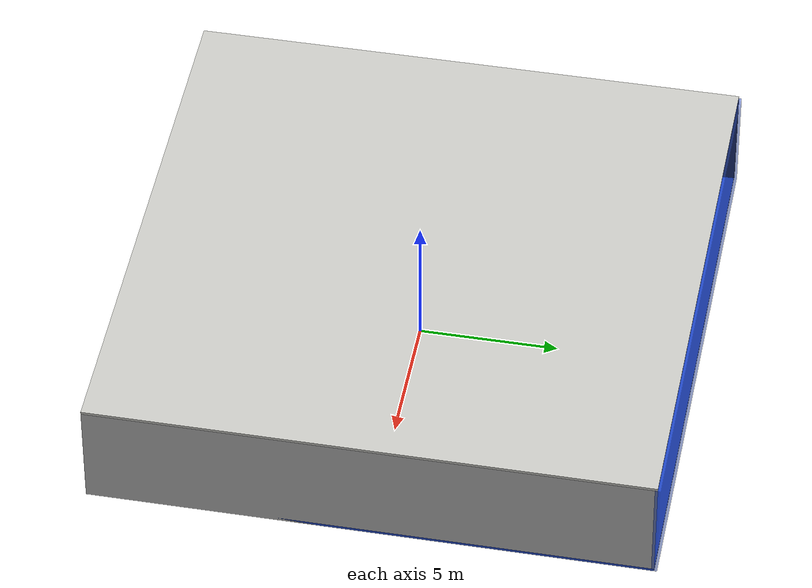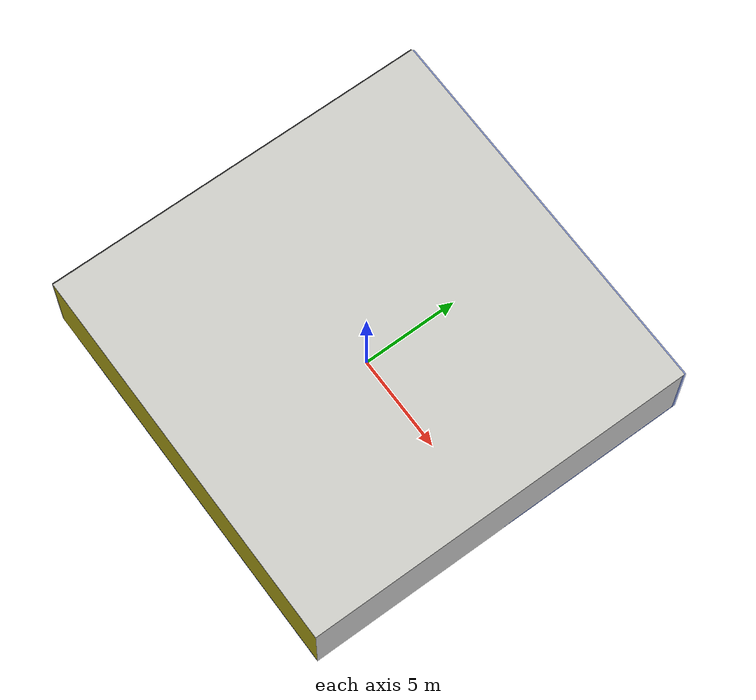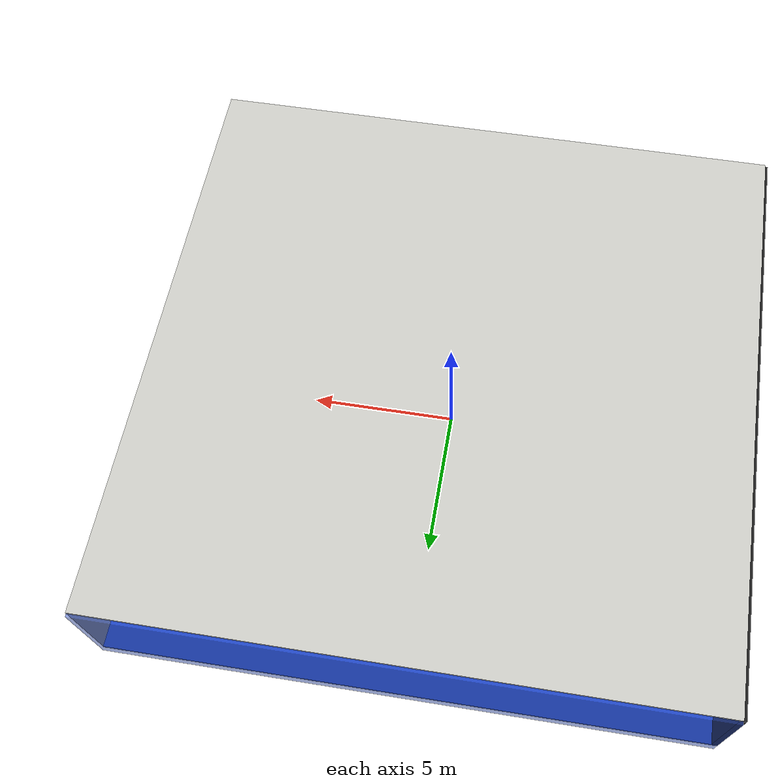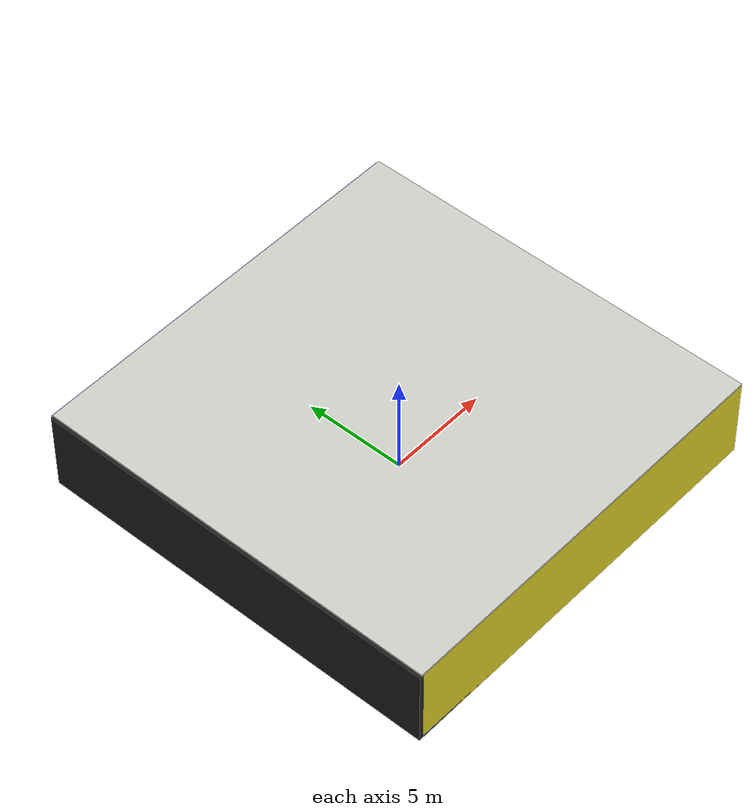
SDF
<sdf version="1.4">
 <world name="default">
  <physics type="ode">
   <max_step_size>0.001</max_step_size>
   <real_time_factor>1</real_time_factor>
   <real_time_update_rate>1000</real_time_update_rate>
   <gravity>0 0 -9.8</gravity>
  </physics>
  <scene><ambient>0.4 0.4 0.4 1</ambient><background>0.7 0.7 0.7 1</background><shadows>1</shadows></scene>
  <model name="Surrounding">
   <static>1</static>
   <link name="Ceiling">
    <collision name="Ceiling_Collision"><geometry><box><size>20 20 0.1</size></box></geometry></collision>
    <visual name="Ceiling_Visual">
     <geometry><box><size>20 20 0.1</size></box></geometry>
     <material>
      <script><uri>file://media/materials/scripts/gazebo.material</uri><name>Gazebo/CeilingTiled</name></script>
     </material>
    </visual>
    <pose>0 0 4.05 0 0 0</pose>
   </link>
   <link name="Wall_South">
    <collision name="Wall_South_Collision">
     <geometry><box><size>20 0 4</size></box></geometry>
     <pose>0 0 2 0 -0 0</pose>
    </collision>
    <visual name="Wall_South_Visual">
     <pose>0 0 2 0 -0 0</pose>
     <geometry><box><size>20 0 4</size></box></geometry>
     <material>
      <script><uri>file://media/materials/scripts/gazebo.material</uri><name>Gazebo/Yellow</name></script>
     </material>
    </visual>
    <velocity_decay><linear>0</linear><angular>0</angular></velocity_decay>
    <pose>0 -10 0 0 -0 0</pose>
   </link>
   <link name="Wall_East">
    <collision name="Wall_21_Collision">
     <geometry><box><size>20 0 4</size></box></geometry>
     <pose>0 0 2 0 -0 0</pose>
    </collision>
    <visual name="Wall_21_Visual">
     <pose>0 0 2 0 -0 0</pose>
     <geometry><box><size>20 0 4</size></box></geometry>
     <material>
      <script><uri>file://media/materials/scripts/gazebo.material</uri><name>Gazebo/CloudySky</name></script>
     </material>
    </visual>
    <velocity_decay><linear>0</linear><angular>0</angular></velocity_decay>
    <pose>10 0 0 0 -0 1.5708</pose>
   </link>
   <link name="Wall_North">
    <collision name="Wall_22_Collision">
     <geometry><box><size>20 0.2 4</size></box></geometry>
     <pose>0 0 2 0 -0 0</pose>
    </collision>
    <visual name="Wall_22_Visual">
     <pose>0 0 2 0 -0 0</pose>
     <geometry><box><size>20 0.2 4</size></box></geometry>
     <material>
      <script><uri>file://media/materials/scripts/gazebo.material</uri><name>Gazebo/BlueTransparent</name></script>
     </material>
    </visual>
    <velocity_decay><linear>0</linear><angular>0</angular></velocity_decay>
    <pose>0 10 0 0 -0 0</pose>
   </link>
   <link name="Wall_West">
    <collision name="Wall_23_Collision">
     <geometry><box><size>20 0.2 4</size></box></geometry>
     <pose>0 0 2 0 -0 0</pose>
    </collision>
    <visual name="Wall_23_Visual">
     <pose>0 0 2 0 -0 0</pose>
     <geometry><box><size>20 0.2 4</size></box></geometry>
     <material>
      <script><uri>file://media/materials/scripts/gazebo.material</uri><name>Gazebo/FlatBlack</name></script>
     </material>
    </visual>
    <velocity_decay><linear>0</linear><angular>0</angular></velocity_decay>
    <pose>-10 0 0 0 0 -1.5708</pose>
   </link>
   <link name="Ground_link">
    <collision name="collision">
     <pose>0 0 .05 0 -0 0</pose>
     <geometry><box><size>20 20 0.1</size></box></geometry>
    </collision>
    <visual name="visual">
     <pose>0 0 .05 0 -0 0</pose>
     <geometry><box><size>20 20 0.1</size></box></geometry>
     <material>
      <script><uri>file://media/materials/scripts/gazebo.material</uri><name>Gazebo/Blue</name></script>
     </material>
    </visual>
   </link>
   <static>1</static>
  </model>
  <spherical_coordinates>
   <surface_model>EARTH_WGS84</surface_model>
   <latitude_deg>0</latitude_deg>
   <longitude_deg>0</longitude_deg>
   <elevation>0</elevation>
   <heading_deg>0</heading_deg>
  </spherical_coordinates>
  <light name="lightball_0" type="diffuse">
   <diffuse>0.8 0.8 0.8 1</diffuse>
   <specular>0.2 0.2 0.2 1</specular>
   <attenuation>
    <range>100</range>
    <constant>0.7</constant>
    <linear>0.01</linear>
    <quadratic>0.001</quadratic>
   </attenuation>
   <direction>-0.5 0.1 -0.9</direction>
   <pose>0.75316152889 5.18500522184 1.23923413593 0 0 0</pose>
  </light>
  <light name="lightball_1" type="diffuse">
   <diffuse>0.8 0.8 0.8 1</diffuse>
   <specular>0.2 0.2 0.2 1</specular>
   <attenuation>
    <range>100</range>
    <constant>0.7</constant>
    <linear>0.01</linear>
    <quadratic>0.001</quadratic>
   </attenuation>
   <direction>-0.5 0.1 -0.9</direction>
   <pose>1.31500576522 3.29051679506 2.92465905379 0 0 0</pose>
  </light>
  <light name="lightball_2" type="diffuse">
   <diffuse>0.8 0.8 0.8 1</diffuse>
   <specular>0.2 0.2 0.2 1</specular>
   <attenuation>
    <range>100</range>
    <constant>0.7</constant>
    <linear>0.01</linear>
    <quadratic>0.001</quadratic>
   </attenuation>
   <direction>-0.5 0.1 -0.9</direction>
   <pose>-3.4126564468 -6.42168554002 0.912743677392 0 0 0</pose>
  </light>
  <light name="lightball_3" type="diffuse">
   <diffuse>0.8 0.8 0.8 1</diffuse>
   <specular>0.2 0.2 0.2 1</specular>
   <attenuation>
    <range>100</range>
    <constant>0.7</constant>
    <linear>0.01</linear>
    <quadratic>0.001</quadratic>
   </attenuation>
   <direction>-0.5 0.1 -0.9</direction>
   <pose>0.960829988195 -8.02082739726 3.15612450193 0 0 0</pose>
  </light>
  <light name="lightball_4" type="diffuse">
   <diffuse>0.8 0.8 0.8 1</diffuse>
   <specular>0.2 0.2 0.2 1</specular>
   <attenuation>
    <range>100</range>
    <constant>0.7</constant>
    <linear>0.01</linear>
    <quadratic>0.001</quadratic>
   </attenuation>
   <direction>-0.5 0.1 -0.9</direction>
   <pose>3.90834939583 5.58046259577 1.36572849763 0 0 0</pose>
  </light>
  <light name="lightball_5" type="diffuse">
   <diffuse>0.8 0.8 0.8 1</diffuse>
   <specular>0.2 0.2 0.2 1</specular>
   <attenuation>
    <range>100</range>
    <constant>0.7</constant>
    <linear>0.01</linear>
    <quadratic>0.001</quadratic>
   </attenuation>
   <direction>-0.5 0.1 -0.9</direction>
   <pose>-9.40839582176 -3.27529759411 2.64229173638 0 0 0</pose>
  </light>
  <light name="lightball_6" type="diffuse">
   <diffuse>0.8 0.8 0.8 1</diffuse>
   <specular>0.2 0.2 0.2 1</specular>
   <attenuation>
    <range>100</range>
    <constant>0.7</constant>
    <linear>0.01</linear>
    <quadratic>0.001</quadratic>
   </attenuation>
   <direction>-0.5 0.1 -0.9</direction>
   <pose>7.0765887148 5.99903916738 1.01484779963 0 0 0</pose>
  </light>
  <light name="lightball_7" type="diffuse">
   <diffuse>0.8 0.8 0.8 1</diffuse>
   <specular>0.2 0.2 0.2 1</specular>
   <attenuation>
    <range>100</range>
    <constant>0.7</constant>
    <linear>0.01</linear>
    <quadratic>0.001</quadratic>
   </attenuation>
   <direction>-0.5 0.1 -0.9</direction>
   <pose>-4.8989489588 -1.74780119042 3.27311279393 0 0 0</pose>
  </light>
  <light name="lightball_8" type="diffuse">
   <diffuse>0.8 0.8 0.8 1</diffuse>
   <specular>0.2 0.2 0.2 1</specular>
   <attenuation>
    <range>100</range>
    <constant>0.7</constant>
    <linear>0.01</linear>
    <quadratic>0.001</quadratic>
   </attenuation>
   <direction>-0.5 0.1 -0.9</direction>
   <pose>0.246014791234 -8.01306742666 3.86882497726 0 0 0</pose>
  </light>
  <light name="lightball_9" type="diffuse">
   <diffuse>0.8 0.8 0.8 1</diffuse>
   <specular>0.2 0.2 0.2 1</specular>
   <attenuation>
    <range>100</range>
    <constant>0.7</constant>
    <linear>0.01</linear>
    <quadratic>0.001</quadratic>
   </attenuation>
   <direction>-0.5 0.1 -0.9</direction>
   <pose>-0.551070450988 -0.772141340172 2.60112159648 0 0 0</pose>
  </light>
  <light name="lightball_10" type="diffuse">
   <diffuse>0.8 0.8 0.8 1</diffuse>
   <specular>0.2 0.2 0.2 1</specular>
   <attenuation>
    <range>100</range>
    <constant>0.7</constant>
    <linear>0.01</linear>
    <quadratic>0.001</quadratic>
   </attenuation>
   <direction>-0.5 0.1 -0.9</direction>
   <pose>-2.78904392489 2.56481976911 0.682758199354 0 0 0</pose>
  </light>
  <light name="lightball_11" type="diffuse">
   <diffuse>0.8 0.8 0.8 1</diffuse>
   <specular>0.2 0.2 0.2 1</specular>
   <attenuation>
    <range>100</range>
    <constant>0.7</constant>
    <linear>0.01</linear>
    <quadratic>0.001</quadratic>
   </attenuation>
   <direction>-0.5 0.1 -0.9</direction>
   <pose>9.67922061901 8.24595461136 0.757241334428 0 0 0</pose>
  </light>
  <light name="lightball_12" type="diffuse">
   <diffuse>0.8 0.8 0.8 1</diffuse>
   <specular>0.2 0.2 0.2 1</specular>
   <attenuation>
    <range>100</range>
    <constant>0.7</constant>
    <linear>0.01</linear>
    <quadratic>0.001</quadratic>
   </attenuation>
   <direction>-0.5 0.1 -0.9</direction>
   <pose>-4.49007163998 6.1982301979 3.4649317011 0 0 0</pose>
  </light>
  <light name="lightball_13" type="diffuse">
   <diffuse>0.8 0.8 0.8 1</diffuse>
   <specular>0.2 0.2 0.2 1</specular>
   <attenuation>
    <range>100</range>
    <constant>0.7</constant>
    <linear>0.01</linear>
    <quadratic>0.001</quadratic>
   </attenuation>
   <direction>-0.5 0.1 -0.9</direction>
   <pose>7.77517353419 3.97165101253 3.86324724274 0 0 0</pose>
  </light>
  <include><uri>model://cabinet</uri><pose>-8.61188559072 -1.74641857865 0 0 0 3.12346578781</pose></include>
  <include>
   <uri>model://robocup_3Dsim_goal</uri>
   <pose>-4.44617424582 -6.65472367685 0 0 0 0.241261318866</pose>
  </include>
  <include>
   <uri>model://construction_cone</uri>
   <pose>-1.81242539305 -1.92217062997 0 0 0 2.14396189504</pose>
  </include>
  <include>
   <uri>model://construction_cone</uri>
   <pose>5.12606945255 -0.326730822021 0 0 0 2.86489125508</pose>
  </include>
  <include>
   <uri>model://construction_cone</uri>
   <pose>7.36667063335 -6.56217943627 0 0 0 2.68914758588</pose>
  </include>
 </world>
</sdf>

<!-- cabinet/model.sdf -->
<sdf version="1.5">
  <model name="cabinet">
    <static>true</static>
    <link name="cabinet_bottom_plate">
      <inertial>
        <pose>0 0 -1 0 0 0</pose>
        <inertia>
          <ixx>2.050000</ixx>
          <ixy>0</ixy>
          <ixz>0</ixz>
          <iyy>2.050000</iyy>
          <iyz>0</iyz>
          <izz>2.050000</izz>
        </inertia>
        <mass>25.000000</mass>
      </inertial>
      <collision name="cabinet_bottom_plate_geom">
        <pose>0 0 0.010000 0 0 0</pose>
        <geometry>
          <box>
            <size>0.450000 0.450000 0.020000</size>
          </box>
        </geometry>
      </collision>
      <visual name="cabinet_bottom_plate_geom_visual">
        <pose>0 0 0.010000 0 0 0</pose>
        <geometry>
          <box>
            <size>0.450000 0.450000 0.020000</size>
          </box>
        </geometry>
        <material>
          <script>
            <uri>model://media/materials/scripts/gazebo.material</uri>
            <name>Gazebo/Wood</name>
          </script>
        </material>
      </visual>
      <collision name="cabinet_bottom_plate_geom_cabinet_back_plate">
        <pose>0.235000 0 0.510000 0 0 0</pose>
        <geometry>
          <box>
            <size>0.020000 0.450000 1.020000</size>
          </box>
        </geometry>
      </collision>
      <visual name="cabinet_bottom_plate_geom_cabinet_back_plate_visual">
        <pose>0.235000 0 0.510000 0 0 0</pose>
        <geometry>
          <box>
            <size>0.020000 0.450000 1.020000</size>
          </box>
        </geometry>
        <material>
          <script>
            <uri>model://media/materials/scripts/gazebo.material</uri>
            <name>Gazebo/Wood</name>
          </script>
        </material>
      </visual>
      <collision name="cabinet_bottom_plate_geom_cabinet_left_plate">
        <pose>0 0.235000 0.510000 0 0 0</pose>
        <geometry>
          <box>
            <size>0.450000 0.020000 1.020000</size>
          </box>
        </geometry>
      </collision>
      <visual name="cabinet_bottom_plate_geom_cabinet_left_plate_visual">
        <pose>0 0.235000 0.510000 0 0 0</pose>
        <geometry>
          <box>
            <size>0.450000 0.020000 1.020000</size>
          </box>
        </geometry>
        <material>
          <script>
            <uri>model://media/materials/scripts/gazebo.material</uri>
            <name>Gazebo/Wood</name>
          </script>
        </material>
      </visual>
      <collision name="cabinet_bottom_plate_geom_cabinet_middle_plate">
        <pose>0 0 0.510000 0 0 0</pose>
        <geometry>
          <box>
            <size>0.450000 0.450000 0.020000</size>
          </box>
        </geometry>
      </collision>
      <visual name="cabinet_bottom_plate_geom_cabinet_middle_plate_visual">
        <pose>0 0 0.510000 0 0 0</pose>
        <geometry>
          <box>
            <size>0.450000 0.450000 0.020000</size>
          </box>
        </geometry>
        <material>
          <script>
            <uri>model://media/materials/scripts/gazebo.material</uri>
            <name>Gazebo/Wood</name>
          </script>
        </material>
      </visual>
      <collision name="cabinet_bottom_plate_geom_cabinet_right_plate">
        <pose>0 -0.235000 0.510000 0 0 0</pose>
        <geometry>
          <box>
            <size>0.450000 0.020000 1.020000</size>
          </box>
        </geometry>
      </collision>
      <visual name="cabinet_bottom_plate_geom_cabinet_right_plate_visual">
        <pose>0 -0.235000 0.510000 0 0 0</pose>
        <geometry>
          <box>
            <size>0.450000 0.020000 1.020000</size>
          </box>
        </geometry>
        <material>
          <script>
            <uri>model://media/materials/scripts/gazebo.material</uri>
            <name>Gazebo/Wood</name>
          </script>
        </material>
      </visual>
      <collision name="cabinet_bottom_plate_geom_cabinet_top_plate">
        <pose>0 0 1.010000 0 0 0</pose>
        <geometry>
          <box>
            <size>0.450000 0.450000 0.020000</size>
          </box>
        </geometry>
      </collision>
      <visual name="cabinet_bottom_plate_geom_cabinet_top_plate_visual">
        <pose>0 0 1.010000 0 0 0</pose>
        <geometry>
          <box>
            <size>0.450000 0.450000 0.020000</size>
          </box>
        </geometry>
        <material>
          <script>
            <uri>model://media/materials/scripts/gazebo.material</uri>
            <name>Gazebo/Wood</name>
          </script>
        </material>
      </visual>
    </link>
  </model>
</sdf>

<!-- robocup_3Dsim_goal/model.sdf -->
<sdf version="1.5">
  <model name="robocup_3d_goal">
    <static>true</static>
    <link name="left_post">
      <pose>0 1.05 0.45 0 0 0</pose>
      <collision name="collision">
        <geometry>
          <cylinder>
            <radius>0.05</radius>
            <length>0.9</length>
          </cylinder>
        </geometry>
      </collision>
      <visual name="visual">
        <geometry>
          <cylinder>
            <radius>0.05</radius>
            <length>0.9</length>
          </cylinder>
        </geometry>
        <material>
          <script>
            <uri>file://media/materials/scripts/gazebo.material</uri>
            <name>Gazebo/ZincYellow</name>
          </script>
        </material>
      </visual>
    </link>
    <link name="left_support_horiz_lower">
      <pose>0.30 1.05 0.01 0 0 0</pose>
      <collision name="collision">
        <geometry>
          <box>
            <size>0.50 0.02 0.02</size>
          </box>
        </geometry>
      </collision>
      <visual name="visual">
        <geometry>
          <box>
            <size>0.50 0.02 0.02</size>
          </box>
        </geometry>
        <material>
          <script>
            <uri>file://media/materials/scripts/gazebo.material</uri>
            <name>Gazebo/White</name>
          </script>
        </material>
      </visual>
    </link>
    <link name="left_support_horiz_upper">
      <pose>0.30 1.05 0.79 0 0 0</pose>
      <collision name="collision">
        <geometry>
          <box>
            <size>0.50 0.02 0.02</size>
          </box>
        </geometry>
      </collision>
      <visual name="visual">
        <geometry>
          <box>
            <size>0.50 0.02 0.02</size>
          </box>
        </geometry>
        <material>
          <script>
            <uri>file://media/materials/scripts/gazebo.material</uri>
            <name>Gazebo/White</name>
          </script>
        </material>
      </visual>
    </link>
    <link name="left_support_vertical">
      <pose>0.56 1.05 0.4 0 1.5708 0</pose>
      <collision name="collision">
        <geometry>
          <box>
            <size>0.80 0.02 0.02</size>
          </box>
        </geometry>
      </collision>
      <visual name="visual">
        <geometry>
          <box>
            <size>0.80 0.02 0.02</size>
          </box>
        </geometry>
        <material>
          <script>
            <uri>file://media/materials/scripts/gazebo.material</uri>
            <name>Gazebo/White</name>
          </script>
        </material>
      </visual>
    </link>
    <link name="right_support_horiz_lower">
      <pose>0.30 -1.05 0.01 0 0 0</pose>
      <collision name="collision">
        <geometry>
          <box>
            <size>0.50 0.02 0.02</size>
          </box>
        </geometry>
      </collision>
      <visual name="visual">
        <geometry>
          <box>
            <size>0.50 0.02 0.02</size>
          </box>
        </geometry>
        <material>
          <script>
            <uri>file://media/materials/scripts/gazebo.material</uri>
            <name>Gazebo/White</name>
          </script>
        </material>
      </visual>
    </link>
    <link name="right_support_horiz_upper">
      <pose>0.30 -1.05 0.79 0 0 0</pose>
      <collision name="collision">
        <geometry>
          <box>
            <size>0.50 0.02 0.02</size>
          </box>
        </geometry>
      </collision>
      <visual name="visual">
        <geometry>
          <box>
            <size>0.50 0.02 0.02</size>
          </box>
        </geometry>
        <material>
          <script>
            <uri>file://media/materials/scripts/gazebo.material</uri>
            <name>Gazebo/White</name>
          </script>
        </material>
      </visual>
    </link>
    <link name="right_support_vertical">
      <pose>0.56 -1.05 0.4 0 1.5708 0</pose>
      <collision name="collision">
        <geometry>
          <box>
            <size>0.80 0.02 0.02</size>
          </box>
        </geometry>
      </collision>
      <visual name="visual">
        <geometry>
          <box>
            <size>0.80 0.02 0.02</size>
          </box>
        </geometry>
        <material>
          <script>
            <uri>file://media/materials/scripts/gazebo.material</uri>
            <name>Gazebo/White</name>
          </script>
        </material>
      </visual>
    </link>
    <link name="center_support_horiz_lower">
      <pose>0.56 0 0.01 0 1.5708 0</pose>
      <collision name="collision">
        <geometry>
          <box>
            <size>0.02 2.08 0.02</size>
          </box>
        </geometry>
      </collision>
      <visual name="visual">
        <geometry>
          <box>
            <size>0.02 2.08 0.02</size>
          </box>
        </geometry>
        <material>
          <script>
            <uri>file://media/materials/scripts/gazebo.material</uri>
            <name>Gazebo/White</name>
          </script>
        </material>
      </visual>
    </link>
    <link name="center_support_horiz_upper">
      <pose>0.56 0 0.79 0 1.5708 0</pose>
      <collision name="collision">
        <geometry>
          <box>
            <size>0.02 2.08 0.02</size>
          </box>
        </geometry>
      </collision>
      <visual name="visual">
        <geometry>
          <box>
            <size>0.02 2.08 0.02</size>
          </box>
        </geometry>
        <material>
          <script>
            <uri>file://media/materials/scripts/gazebo.material</uri>
            <name>Gazebo/White</name>
          </script>
        </material>
      </visual>
    </link>
    <link name="right_post">
      <pose>0 -1.05 0.45 0 0 0</pose>
      <collision name="collision">
        <geometry>
          <cylinder>
            <radius>0.05</radius>
            <length>0.9</length>
          </cylinder>
        </geometry>
      </collision>
      <visual name="visual">
        <geometry>
          <cylinder>
            <radius>0.05</radius>
            <length>0.9</length>
          </cylinder>
        </geometry>
        <material>
          <script>
            <uri>file://media/materials/scripts/gazebo.material</uri>
            <name>Gazebo/ZincYellow</name>
          </script>
        </material>
      </visual>
    </link>
    <link name="crossbar">
      <pose>0 0 0.85 1.57 1.57 0</pose>
      <collision name="collision">
        <geometry>
          <cylinder>
            <radius>0.05</radius>
            <length>2.0</length>
          </cylinder>
        </geometry>
      </collision>
      <visual name="visual">
        <geometry>
          <cylinder>
            <radius>0.05</radius>
            <length>2.0</length>
          </cylinder>
        </geometry>
        <material>
          <script>
            <uri>file://media/materials/scripts/gazebo.material</uri>
            <name>Gazebo/ZincYellow</name>
          </script>
        </material>
      </visual>
    </link>
    <link name="center_net">
      <pose>0.56 0 0.40 0 0 0</pose>
      <collision name="collision">
        <geometry>
          <box>
            <size>0.01 2.1 0.80</size>
          </box>
        </geometry>
      </collision>
      <visual name="visual">
        <geometry>
          <box>
            <size>0.01 2.1 0.80</size>
          </box>
        </geometry>
        <material>
          <script>
            <uri>model://../model_source/models/robocup09_spl_field/materials/scripts/</uri>
            <uri>model://../model_source/models/robocup09_spl_field/materials/textures/</uri>
            <name>RoboCup/Net</name>
          </script>
        </material>
      </visual>
    </link>
    <link name="left_net">
      <pose>0.30 1.05 0.40 0 0 0</pose>
      <collision name="collision">
        <geometry>
          <box>
            <size>0.50 0.01 0.76</size>
          </box>
        </geometry>
      </collision>
      <visual name="visual">
        <geometry>
          <box>
            <size>0.50 0.01 0.76</size>
          </box>
        </geometry>
        <material>
          <script>
            <uri>model://../model_source/models/robocup09_spl_field/materials/scripts/</uri>
            <uri>model://../model_source/models/robocup09_spl_field/materials/textures/</uri>
            <name>RoboCup/Net</name>
          </script>
        </material>
      </visual>
    </link>
    <link name="right_net">
      <pose>0.30 -1.05 0.40 0 0 0</pose>
      <collision name="collision">
        <geometry>
          <box>
            <size>0.50 0.01 0.76</size>
          </box>
        </geometry>
      </collision>
      <visual name="visual">
        <geometry>
          <box>
            <size>0.50 0.01 0.76</size>
          </box>
        </geometry>
        <material>
          <script>
            <uri>model://../model_source/models/robocup09_spl_field/materials/scripts/</uri>
            <uri>model://../model_source/models/robocup09_spl_field/materials/textures/</uri>
            <name>RoboCup/Net</name>
          </script>
        </material>
      </visual>
    </link>
  </model>
</sdf>

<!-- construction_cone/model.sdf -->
<sdf version="1.5">
  <model name="Construction Cone">
    <link name="link">
      <collision name="collision">
        <geometry>
          <mesh>
            <scale>10 10 10</scale>
            <uri>file://isr-testbed/construction_cone/meshes/construction_cone.dae</uri>
          </mesh>
        </geometry>
      </collision>
      <visual name="visual">
        <geometry>
          <mesh>
            <scale>10 10 10</scale>
            <uri>file://isr-testbed/construction_cone/meshes/construction_cone.dae</uri>
          </mesh>
        </geometry>
      </visual>
    </link>
  </model>
</sdf>
